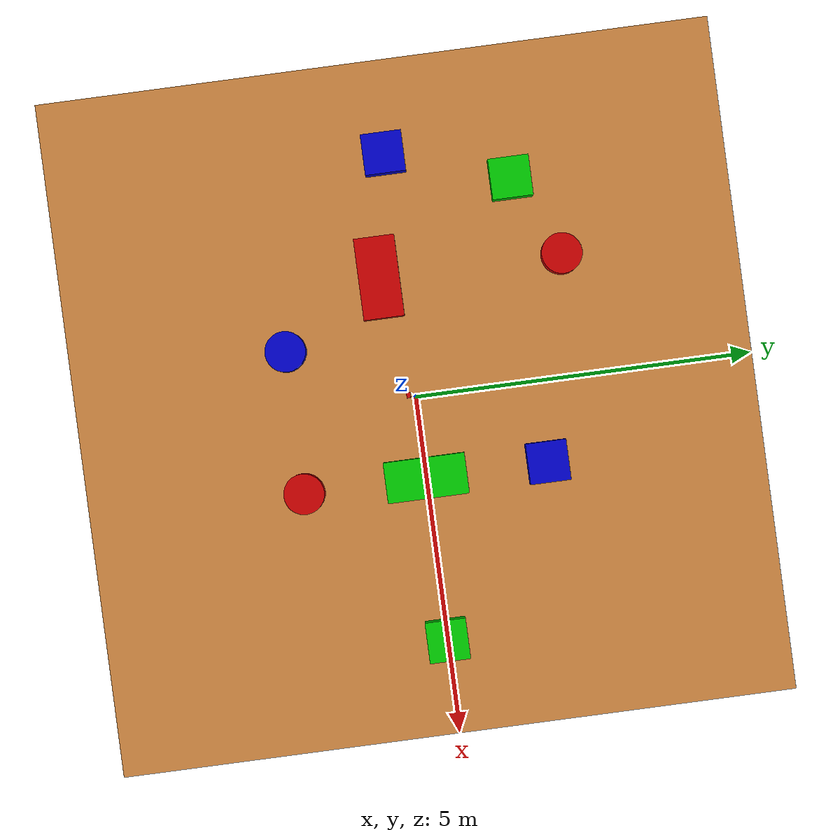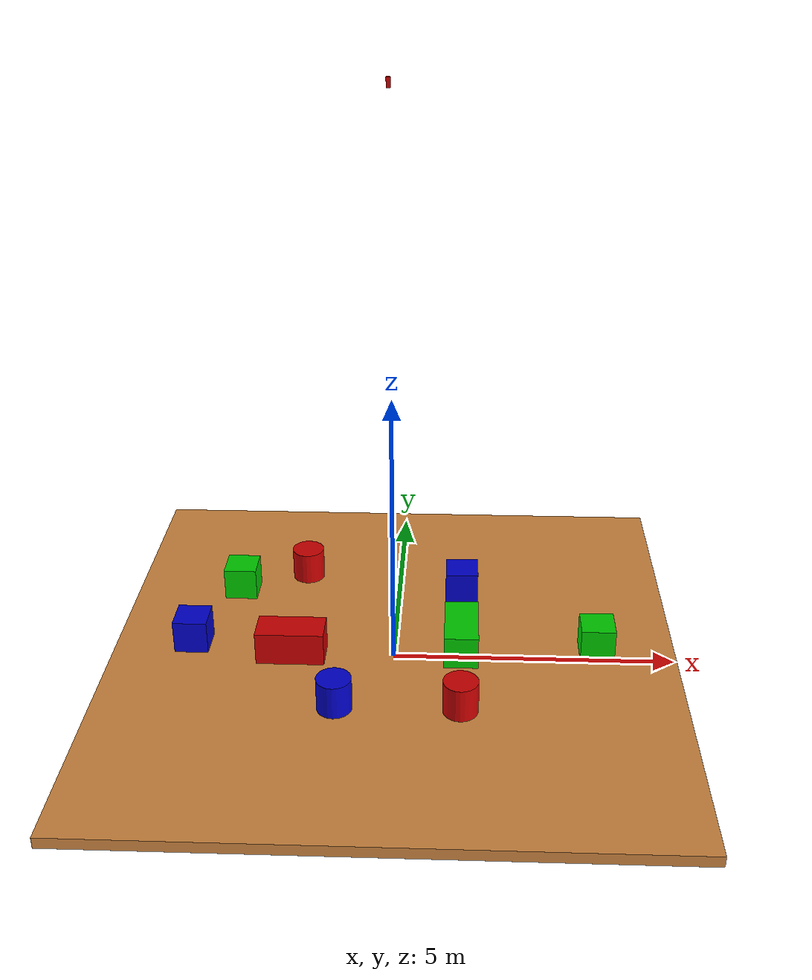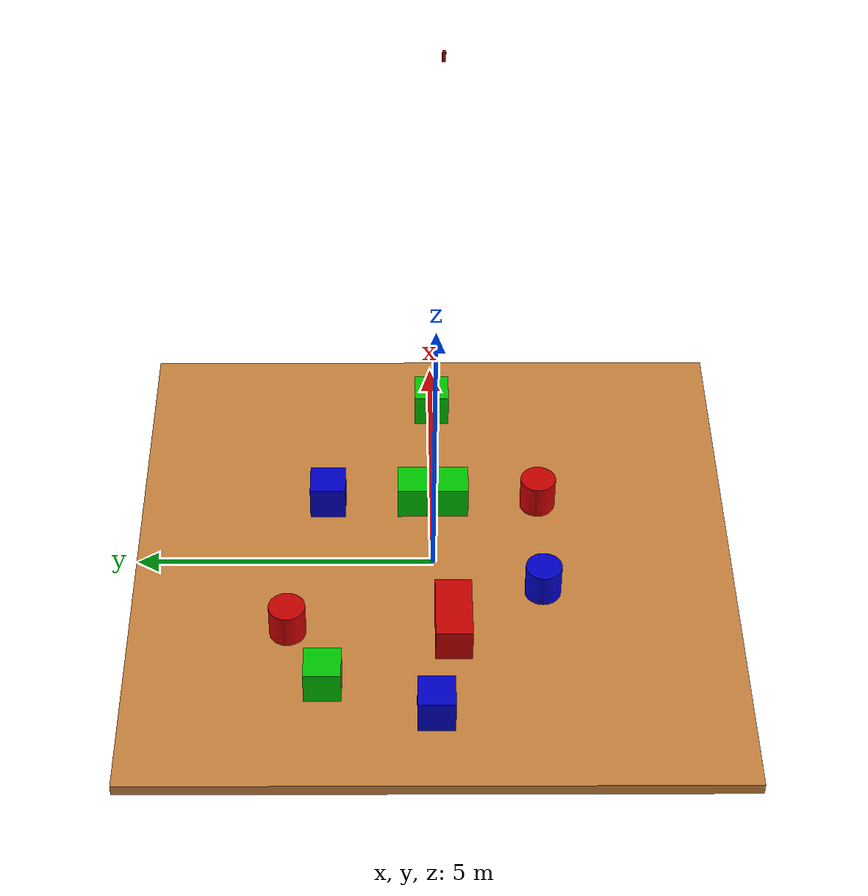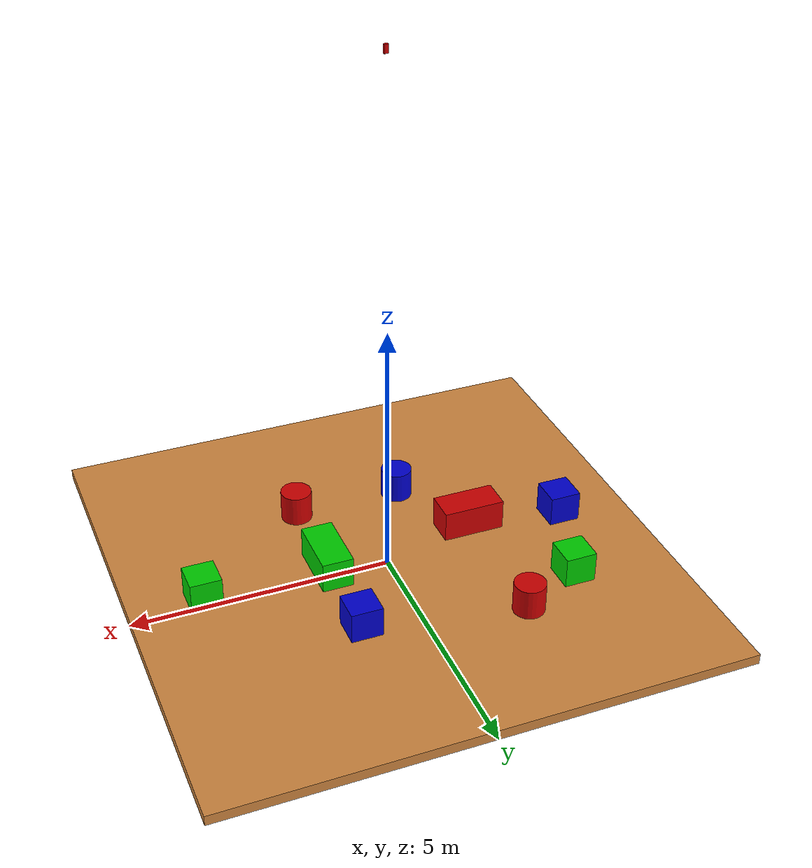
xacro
<?xml version="1.0"?>
<robot name="objects" xmlns:xacro="http://www.ros.org/wiki/xacro">
  <!--
  @author: Russell Valente
  rcvalente2@wpi.edu
  WPI - Robotics Engineering Dept
  -->
  <!-- Include Camera plugin -->
  <xacro:include filename="$(find workspace_description)/urdf/objects.plugins.xacro" />

  <!-- Color Definitions -->
  <material name="red">
    <color rgba="0.8 0.0 0.0 1.0"/>
  </material>
  <material name="blue">
    <color rgba="0.0 0.0 0.8 1.0"/>
  </material>
  <material name="green">
    <color rgba="0.0 0.8 0.0 1.0"/>
  </material>
  <material name="white">
    <color rgba="1.0 1.0 1.0 1.0"/>
  </material>
  <material name="yellow">
    <color rgba="0.8 0.8 0.0 1.0"/>
  </material>
  <material name="gray">
    <color rgba="0.7 0.7 0.7 1.0"/>
  </material>
  <material name="wood">
    <color rgba="${205/255} ${133/255} ${63/255} 1" />
  </material>

  <xacro:property name="base_l" value="10"/>
  <xacro:property name="base_w" value="10"/>
  <xacro:property name="base_h" value="0.2"/>
  <xacro:property name="cyllen" value="0.6"/>
  <xacro:property name="cylrad" value="0.3"/>
  <xacro:property name="box_l" value="0.6"/>
  <xacro:property name="box_w" value="0.6"/>
  <xacro:property name="box_h" value="0.6"/>

  <!-- Box 1 -->
  <link name="base">
    <visual>
      <geometry>
        <box size="${base_l} ${base_w} ${base_h}"/>
      </geometry>
      <origin xyz="0 0 ${base_h/2}" rpy="0 0 0"/>
      <material name="wood"/>
    </visual>
    <collision>
      <geometry>
        <box size="${base_l} ${base_w} ${base_h}"/>
      </geometry>
      <origin xyz="0 0 ${base_h/2}" rpy="0 0 0"/>
    </collision>
  </link>
  <gazebo reference="base">
    <material>Gazebo/Wood</material>
  </gazebo>

<!-- Cylinder 1 -->
  <link name="cyl_1">
    <visual>
      <geometry>
        <cylinder radius="${cylrad}" length="${cyllen}"/>
      </geometry>
      <origin xyz="${cylrad*4} -${cylrad*6} ${cyllen/2+base_h}" rpy="0 0 0"/>
      <material name="red"/>
    </visual>
    <inertial>
        <mass value="5" />
        <origin xyz="0 0 0" rpy="0 0 0" />
        <inertia ixx="0.004" ixy="0.001" ixz="0" iyy="0.006" iyz="0" izz="0.007" />
    </inertial>
    <collision>
      <geometry>
      	<cylinder radius="${cylrad}" length="${cyllen}"/>
      </geometry>
      <origin xyz="${cylrad*4} -${cylrad*6} ${cyllen/2+base_h}" rpy="0 0 0"/>
    </collision>
  </link>
  <gazebo reference="cyl_1">
    <material>Gazebo/Red</material>
  </gazebo>

<!-- Cylinder 2 -->
<link name="cyl_2">
  <visual>
    <geometry>
      <cylinder radius="${cylrad}" length="${cyllen}"/>
    </geometry>
    <origin xyz="-${cylrad*3} -${cylrad*6} ${cyllen/2+base_h}" rpy="0 0 0"/>
    <material name="blue"/>
  </visual>
  <inertial>
      <mass value="5" />
      <origin xyz="0 0 0" rpy="0 0 0" />
      <inertia ixx="0.004" ixy="0.001" ixz="0" iyy="0.006" iyz="0" izz="0.007" />
  </inertial>
  <collision>
    <geometry>
      <cylinder radius="${cylrad}" length="${cyllen}"/>
    </geometry>
    <origin xyz="-${cylrad*3} -${cylrad*6} ${cyllen/2+base_h}" rpy="0 0 0"/>
  </collision>
</link>
<gazebo reference="cyl_2">
  <material>Gazebo/Blue</material>
</gazebo>

<!-- Cylinder 3 -->
  <link name="cyl_3">
    <visual>
      <geometry>
        <cylinder radius="${cylrad}" length="${cyllen}"/>
      </geometry>
      <origin xyz="-${cylrad*6} ${cylrad*8} ${cyllen/2+base_h}" rpy="0 0 0"/>
      <material name="red"/>
    </visual>
    <inertial>
        <mass value="5" />
        <origin xyz="0 0 0" rpy="0 0 0" />
        <inertia ixx="0.004" ixy="0.001" ixz="0" iyy="0.006" iyz="0" izz="0.007" />
    </inertial>
    <collision>
      <geometry>
      	<cylinder radius="${cylrad}" length="${cyllen}"/>
      </geometry>
      <origin xyz="-${cylrad*6} ${cylrad*8} ${cyllen/2+base_h}" rpy="0 0 0"/>
    </collision>
  </link>
  <gazebo reference="cyl_3">
    <material>Gazebo/Red</material>
  </gazebo>

  <!-- Box 1 -->
  <link name="box_1">
    <visual>
      <geometry>
        <box size="${box_l} ${box_w} ${box_h}"/>
      </geometry>
      <origin xyz="${box_l*2} ${box_w*3} ${box_h/2+base_h}" rpy="0 0 0"/>
      <material name="blue"/>
    </visual>
    <inertial>
        <mass value="1" />
        <origin xyz="0 0 0" rpy="0 0 0" />
        <inertia ixx="0.17" ixy="0.00" ixz="0" iyy="0.17" iyz="0" izz="0.17" />
    </inertial>
    <collision>
      <geometry>
        <box size="${box_l} ${box_w} ${box_h}"/>
      </geometry>
      <origin xyz="${box_l*2} ${box_w*3} ${box_h/2+base_h}" rpy="0 0 0"/>
    </collision>
  </link>
  <gazebo reference="box_1">
    <material>Gazebo/Blue</material>
  </gazebo>

  <!-- Box 2 -->
  <link name="box_2">
    <visual>
      <geometry>
        <box size="${box_l} ${box_w} ${box_h}"/>
      </geometry>
      <origin xyz="-${box_l*5} ${box_w*3} ${box_h/2+base_h}" rpy="0 0 0"/>
      <material name="green"/>
    </visual>
    <inertial>
        <mass value="1" />
        <origin xyz="0 0 0" rpy="0 0 0" />
        <inertia ixx="0.17" ixy="0.00" ixz="0" iyy="0.17" iyz="0" izz="0.17" />
    </inertial>
    <collision>
      <geometry>
        <box size="${box_l} ${box_w} ${box_h}"/>
      </geometry>
      <origin xyz="-${box_l*5} ${box_w*3} ${box_h/2+base_h}" rpy="0 0 0"/>
    </collision>
  </link>
  <gazebo reference="box_2">
    <material>Gazebo/Green</material>
  </gazebo>

  <!-- Box 3 -->
  <link name="box_3">
    <visual>
      <geometry>
        <box size="${box_l} ${box_w} ${box_h}"/>
      </geometry>
      <origin xyz="${box_l*6} 0 ${box_h/2+base_h}" rpy="0 0 0"/>
      <material name="green"/>
    </visual>
    <inertial>
        <mass value="1" />
        <origin xyz="0 0 0" rpy="0 0 0" />
        <inertia ixx="0.17" ixy="0.00" ixz="0" iyy="0.17" iyz="0" izz="0.17" />
    </inertial>
    <collision>
      <geometry>
        <box size="${box_l} ${box_w} ${box_h}"/>
      </geometry>
      <origin xyz="${box_l*6} 0 ${box_h/2+base_h}" rpy="0 0 0"/>
    </collision>
  </link>
  <gazebo reference="box_3">
    <material>Gazebo/Green</material>
  </gazebo>

  <!-- Box 4 -->
  <link name="box_4">
    <visual>
      <geometry>
        <box size="${box_l} ${box_w} ${box_h}"/>
      </geometry>
      <origin xyz="-${box_l*6} 0 ${box_h/2+base_h}" rpy="0 0 0"/>
      <material name="blue"/>
    </visual>
    <inertial>
        <mass value="1" />
        <origin xyz="0 0 0" rpy="0 0 0" />
        <inertia ixx="0.17" ixy="0.00" ixz="0" iyy="0.17" iyz="0" izz="0.17" />
    </inertial>
    <collision>
      <geometry>
        <box size="${box_l} ${box_w} ${box_h}"/>
      </geometry>
      <origin xyz="-${box_l*6} 0 ${box_h/2+base_h}" rpy="0 0 0"/>
    </collision>
  </link>
  <gazebo reference="box_4">
    <material>Gazebo/Blue</material>
  </gazebo>

  <!-- Box 5 -->
  <link name="box_5">
    <visual>
      <geometry>
        <box size="${box_l*2} ${box_w} ${box_h}"/>
      </geometry>
      <origin xyz="-${box_l*3} -${box_h/2} ${box_h/2+base_h}" rpy="0 0 0"/>
      <material name="red"/>
    </visual>
    <inertial>
        <mass value="1" />
        <origin xyz="0 0 0" rpy="0 0 0" />
        <inertia ixx="0.17" ixy="0.00" ixz="0" iyy="0.17" iyz="0" izz="0.17" />
    </inertial>
    <collision>
      <geometry>
        <box size="${box_l*2} ${box_w} ${box_h}"/>
      </geometry>
      <origin xyz="-${box_l*3} -${box_h/2} ${box_h/2+base_h}" rpy="0 0 0"/>
    </collision>
  </link>
  <gazebo reference="box_5">
    <material>Gazebo/Red</material>
  </gazebo>

  <!-- Box 6 -->
  <link name="box_6">
    <visual>
      <geometry>
        <box size="${box_l} ${box_w*2} ${box_h}"/>
      </geometry>
      <origin xyz="${box_l*2} 0 ${box_h/2+base_h}" rpy="0 0 0"/>
      <material name="green"/>
    </visual>
    <inertial>
        <mass value="1" />
        <origin xyz="0 0 0" rpy="0 0 0" />
        <inertia ixx="0.17" ixy="0.00" ixz="0" iyy="0.17" iyz="0" izz="0.17" />
    </inertial>
    <collision>
      <geometry>
        <box size="${box_l} ${box_w*2} ${box_h}"/>
      </geometry>
      <origin xyz="${box_l*2} 0 ${box_h/2+base_h}" rpy="0 0 0"/>
    </collision>
  </link>
  <gazebo reference="box_6">
    <material>Gazebo/Green</material>
  </gazebo>

  <!-- Add a camera in the URDF -->
  <xacro:property name="camera_yaw_angle" value="1.5708" />
  <xacro:property name="camera_roll_angle" value= "0"/> <!--"${-pi/2 - pi/6}" -->
  <xacro:property name="camera_pitch_angle" value= "1.5708"/>
  <xacro:property name="camera_depth" value="0.05" />
  <xacro:property name="camera_height" value="0.07" />
  <xacro:property name="camera_length" value="0.15" />
  <xacro:property name="camera_z_offset" value="0.01" />
  <!-- Size of square 'camera' box -->
  <xacro:property name="camera_x" value="0" />
  <!-- x position of 'camera' box -->
  <xacro:property name="camera_y" value="0.0" />
  <!-- y position of 'camera' box -->
  <xacro:property name="camera_z" value="10" />
  <!-- z position of 'camera' box -->
  <joint name="camera_joint" type="fixed">
    <axis xyz="0 0.2 0" />
    <origin xyz="${camera_x} ${camera_y} ${camera_z}"
      rpy="${camera_roll_angle} ${camera_pitch_angle} ${camera_yaw_angle}"/>
    <parent link="base"/>
    <child link="camera_link"/>
  </joint>
  <!-- Camera -->
  <link name="camera_link">
    <collision>
      <origin xyz="0 0 ${-1 * camera_depth - camera_z_offset}" rpy="0 0 0"/>
      <geometry>
        <box size="${camera_length} ${camera_height} ${camera_depth}"/>
      </geometry>
    </collision>

    <visual>
      <origin xyz="0 0 ${-1 * camera_depth - camera_z_offset}" rpy="0 0 0"/>
      <geometry>
        <box size="${camera_length} ${camera_height} ${camera_depth}"/>
      </geometry>
      <material name="red"/>
    </visual>

    <inertial>
      <mass value="1e-5" />
      <origin xyz="0 0 0" rpy="0 0 0"/>
      <inertia ixx="1e-6" ixy="0" ixz="0" iyy="1e-6" iyz="0" izz="1e-6" />
    </inertial>
  </link>

  <gazebo reference="camera_link">
    <sensor type="camera" name="camera1">
      <update_rate>30.0</update_rate>
      <camera name="head">
        <horizontal_fov>1.3962634</horizontal_fov>
        <image>
          <width>800</width>
          <height>600</height>
          <format>R8G8B8</format>
        </image>
        <clip>
          <near>0.02</near>
          <far>300</far>
        </clip>
        <noise>
          <type>gaussian</type>
          <!-- Noise is sampled independently per pixel on each frame.
               That pixel's noise value is added to each of its color
               channels, which at that point lie in the range [0,1]. -->
          <mean>0.0</mean>
          <stddev>0.007</stddev>
        </noise>
      </camera>

      <plugin name="camera_controller" filename="libgazebo_ros_camera.so">
        <alwaysOn>true</alwaysOn>
        <updateRate>0.0</updateRate>
        <cameraName>mybot/camera</cameraName>
        <imageTopicName>image_raw</imageTopicName>
        <cameraInfoTopicName>camera_info</cameraInfoTopicName>
        <frameName>camera_link</frameName>
        <hackBaseline>0.07</hackBaseline>
        <distortionK1>0.0</distortionK1>
        <distortionK2>0.0</distortionK2>
        <distortionK3>0.0</distortionK3>
        <distortionT1>0.0</distortionT1>
        <distortionT2>0.0</distortionT2>
      </plugin>
    </sensor>
  </gazebo>

  <!-- Links -->
  <joint name="joint_1" type="fixed">
    <axis xyz = "0 0 ${base_h/2}" />
    <origin rpy="0 0 0" xyz="0 0 0"/>
    <parent link="base"/>
    <child link="cyl_1"/>
  </joint>

  <joint name="joint_2" type="fixed">
    <axis xyz = "0 0 ${base_h/2}" />
    <origin rpy="0 0 0" xyz="0 0 0"/>
    <parent link="base"/>
    <child link="cyl_2"/>
  </joint>

  <joint name="joint_3" type="fixed">
    <axis xyz = "0 0 ${base_h/2}" />
    <origin rpy="0 0 0" xyz="0 0 0"/>
    <parent link="base"/>
    <child link="cyl_3"/>
  </joint>

  <joint name="joint_4" type="fixed">
    <axis xyz = "0 0 ${box_h/2+base_h}" />
    <origin rpy="0 0 0" xyz="0 0 0"/>
    <parent link="base"/>
    <child link="box_1"/>
  </joint>

  <joint name="joint_5" type="fixed">
    <axis xyz = "0 0 ${box_h/2+base_h}" />
    <origin rpy="0 0 0" xyz="0 0 0"/>
    <parent link="base"/>
    <child link="box_2"/>
  </joint>

  <joint name="joint_6" type="fixed">
    <axis xyz = "0 0 ${box_h/2+base_h}" />
    <origin rpy="0 0 0" xyz="0 0 0"/>
    <parent link="base"/>
    <child link="box_3"/>
  </joint>

  <joint name="joint_7" type="fixed">
    <axis xyz = "0 0 ${box_h/2+base_h}" />
    <origin rpy="0 0 0" xyz="0 0 0"/>
    <parent link="base"/>
    <child link="box_4"/>
  </joint>

  <joint name="joint_8" type="fixed">
    <axis xyz = "0 0 ${box_h/2+base_h}" />
    <origin rpy="0 0 0" xyz="0 0 0"/>
    <parent link="base"/>
    <child link="box_5"/>
  </joint>

  <joint name="joint_9" type="fixed">
    <axis xyz = "0 0 ${box_h/2+base_h}" />
    <origin rpy="0 0 0" xyz="0 0 0"/>
    <parent link="base"/>
    <child link="box_6"/>
  </joint>

</robot>
